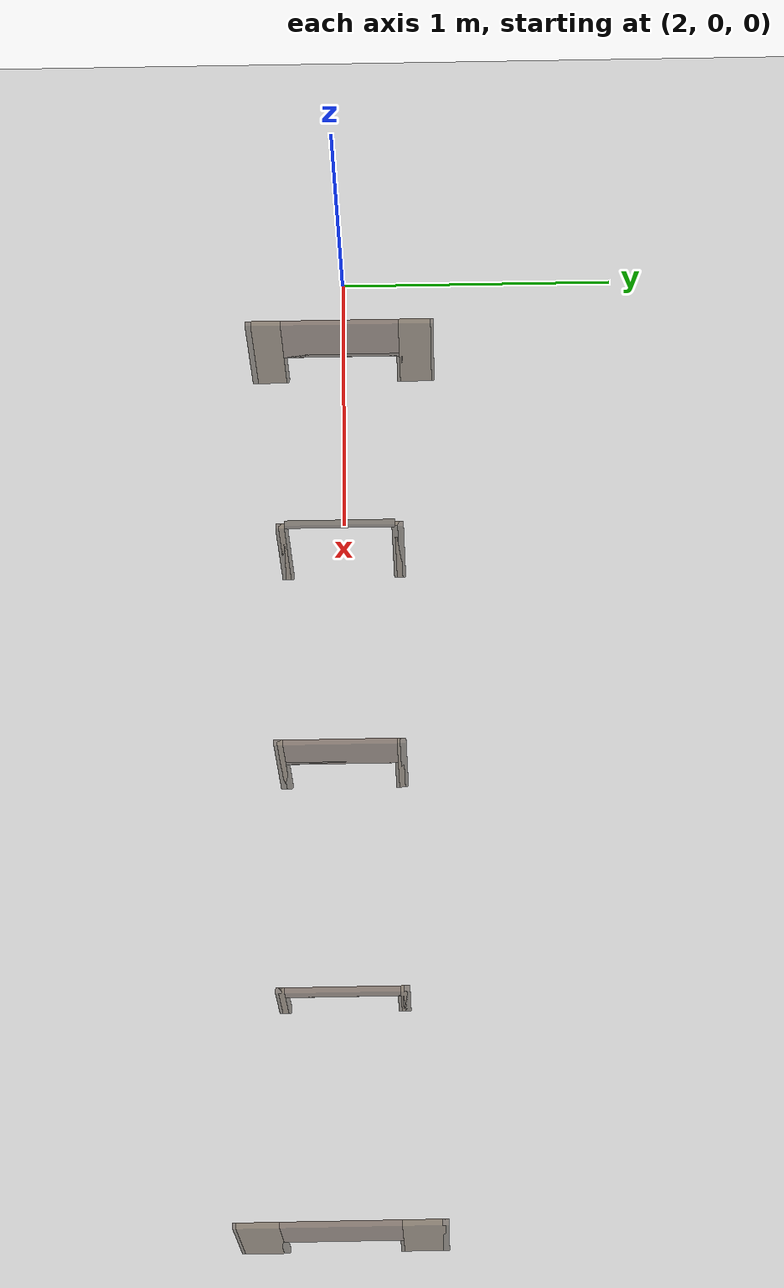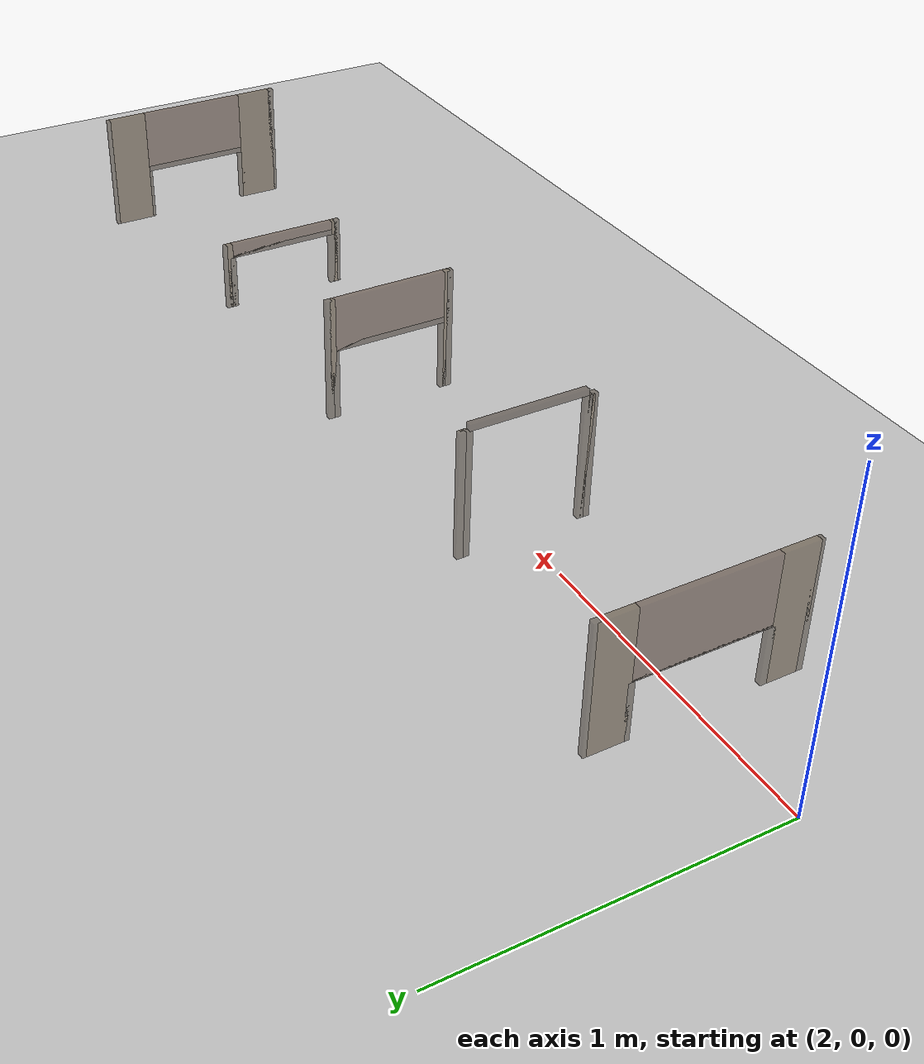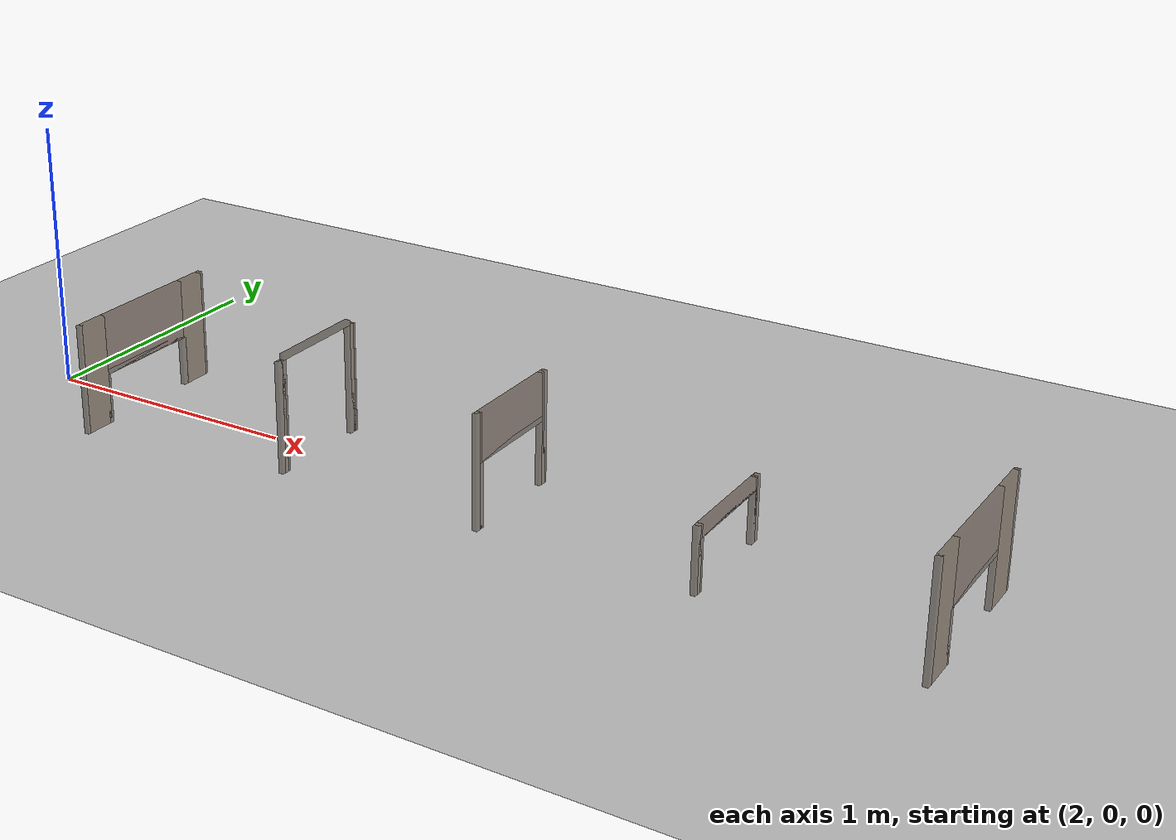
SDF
<sdf version="1.8">
 <world name="friction_world">
  <model name="ground_plane">
   <static>true</static>
   <link name="link">
    <collision name="collision">
     <geometry><plane><normal>0 0 1</normal><size>100 100</size></plane></geometry>
     <surface><friction><ode><mu>0.7</mu><mu2>0.7</mu2></ode></friction></surface>
    </collision>
    <visual name="visual">
     <geometry><plane><normal>0 0 1</normal><size>100 100</size></plane></geometry>
     <material><ambient>0.8 0.8 0.8 1</ambient><diffuse>0.8 0.8 0.8 1</diffuse></material>
    </visual>
   </link>
  </model>
  <model name="cap_b3">
   <static>true</static>
   <link name="ceiling_cap">
    <pose>2.4000000000000004 0 0.2 0 0 0</pose>
    <collision name="c"><geometry><box><size>0.02 0.42 0.02</size></box></geometry></collision>
    <visual name="v">
     <geometry><box><size>0.02 0.42 0.02</size></box></geometry>
     <material><ambient>0.2 0.15 0.1 0.5</ambient></material>
     <transparency>0.2</transparency>
    </visual>
   </link>
   <link name="height_step">
    <pose>2.4000000000000004 0 0.305 0 0 0</pose>
    <collision name="c"><geometry><box><size>0.02 0.42 0.22999999999999998</size></box></geometry></collision>
    <visual name="v">
     <geometry><box><size>0.02 0.42 0.22999999999999998</size></box></geometry>
     <material><ambient>0.28 0.18 0.12 0.5</ambient></material>
     <transparency>0.2</transparency>
    </visual>
   </link>
   <link name="left_cap">
    <pose>2.4000000000000004 -0.21 0.095 0 0 0</pose>
    <collision name="c"><geometry><box><size>0.02 0.02 0.19</size></box></geometry></collision>
    <visual name="v">
     <geometry><box><size>0.02 0.02 0.19</size></box></geometry>
     <material><ambient>0.25 0.2 0.15 0.5</ambient></material>
     <transparency>0.2</transparency>
    </visual>
   </link>
   <link name="right_cap">
    <pose>2.4000000000000004 0.21 0.095 0 0 0</pose>
    <collision name="c"><geometry><box><size>0.02 0.02 0.19</size></box></geometry></collision>
    <visual name="v">
     <geometry><box><size>0.02 0.02 0.19</size></box></geometry>
     <material><ambient>0.25 0.2 0.15 0.5</ambient></material>
     <transparency>0.2</transparency>
    </visual>
   </link>
   <link name="left_flange">
    <pose>2.4000000000000004 -0.2675 0.21 0 0 0</pose>
    <collision name="c"><geometry><box><size>0.02 0.11500000000000002 0.42</size></box></geometry></collision>
    <visual name="v">
     <geometry><box><size>0.02 0.11500000000000002 0.42</size></box></geometry>
     <material><ambient>0.3 0.22 0.12 0.5</ambient></material>
     <transparency>0.2</transparency>
    </visual>
   </link>
   <link name="right_flange">
    <pose>2.4000000000000004 0.2675 0.21 0 0 0</pose>
    <collision name="c"><geometry><box><size>0.02 0.11500000000000002 0.42</size></box></geometry></collision>
    <visual name="v">
     <geometry><box><size>0.02 0.11500000000000002 0.42</size></box></geometry>
     <material><ambient>0.3 0.22 0.12 0.5</ambient></material>
     <transparency>0.2</transparency>
    </visual>
   </link>
   <link name="left_outer_cap">
    <pose>2.4000000000000004 -0.325 0.21 0 0 0</pose>
    <collision name="c"><geometry><box><size>0.02 0.02 0.42</size></box></geometry></collision>
    <visual name="v">
     <geometry><box><size>0.02 0.02 0.42</size></box></geometry>
     <material><ambient>0.25 0.2 0.15 0.5</ambient></material>
     <transparency>0.2</transparency>
    </visual>
   </link>
   <link name="right_outer_cap">
    <pose>2.4000000000000004 0.325 0.21 0 0 0</pose>
    <collision name="c"><geometry><box><size>0.02 0.02 0.42</size></box></geometry></collision>
    <visual name="v">
     <geometry><box><size>0.02 0.02 0.42</size></box></geometry>
     <material><ambient>0.25 0.2 0.15 0.5</ambient></material>
     <transparency>0.2</transparency>
    </visual>
   </link>
  </model>
  <model name="cap_b4">
   <static>true</static>
   <link name="ceiling_cap">
    <pose>3.2 0 0.43 0 0 0</pose>
    <collision name="c"><geometry><box><size>0.02 0.38 0.02</size></box></geometry></collision>
    <visual name="v">
     <geometry><box><size>0.02 0.38 0.02</size></box></geometry>
     <material><ambient>0.2 0.15 0.1 0.5</ambient></material>
     <transparency>0.2</transparency>
    </visual>
   </link>
   <link name="left_cap">
    <pose>3.2 -0.19 0.21 0 0 0</pose>
    <collision name="c"><geometry><box><size>0.02 0.02 0.42</size></box></geometry></collision>
    <visual name="v">
     <geometry><box><size>0.02 0.02 0.42</size></box></geometry>
     <material><ambient>0.25 0.2 0.15 0.5</ambient></material>
     <transparency>0.2</transparency>
    </visual>
   </link>
   <link name="right_cap">
    <pose>3.2 0.19 0.21 0 0 0</pose>
    <collision name="c"><geometry><box><size>0.02 0.02 0.42</size></box></geometry></collision>
    <visual name="v">
     <geometry><box><size>0.02 0.02 0.42</size></box></geometry>
     <material><ambient>0.25 0.2 0.15 0.5</ambient></material>
     <transparency>0.2</transparency>
    </visual>
   </link>
   <link name="left_flange">
    <pose>3.2 -0.2 0.21 0 0 0</pose>
    <collision name="c"><geometry><box><size>0.02 0.01999999999999999 0.42</size></box></geometry></collision>
    <visual name="v">
     <geometry><box><size>0.02 0.01999999999999999 0.42</size></box></geometry>
     <material><ambient>0.3 0.22 0.12 0.5</ambient></material>
     <transparency>0.2</transparency>
    </visual>
   </link>
   <link name="right_flange">
    <pose>3.2 0.2 0.21 0 0 0</pose>
    <collision name="c"><geometry><box><size>0.02 0.01999999999999999 0.42</size></box></geometry></collision>
    <visual name="v">
     <geometry><box><size>0.02 0.01999999999999999 0.42</size></box></geometry>
     <material><ambient>0.3 0.22 0.12 0.5</ambient></material>
     <transparency>0.2</transparency>
    </visual>
   </link>
   <link name="left_outer_cap">
    <pose>3.2 -0.21 0.21 0 0 0</pose>
    <collision name="c"><geometry><box><size>0.02 0.02 0.42</size></box></geometry></collision>
    <visual name="v">
     <geometry><box><size>0.02 0.02 0.42</size></box></geometry>
     <material><ambient>0.25 0.2 0.15 0.5</ambient></material>
     <transparency>0.2</transparency>
    </visual>
   </link>
   <link name="right_outer_cap">
    <pose>3.2 0.21 0.21 0 0 0</pose>
    <collision name="c"><geometry><box><size>0.02 0.02 0.42</size></box></geometry></collision>
    <visual name="v">
     <geometry><box><size>0.02 0.02 0.42</size></box></geometry>
     <material><ambient>0.25 0.2 0.15 0.5</ambient></material>
     <transparency>0.2</transparency>
    </visual>
   </link>
  </model>
  <model name="cap_b5">
   <static>true</static>
   <link name="ceiling_cap">
    <pose>4.0 0 0.25 0 0 0</pose>
    <collision name="c"><geometry><box><size>0.02 0.38 0.02</size></box></geometry></collision>
    <visual name="v">
     <geometry><box><size>0.02 0.38 0.02</size></box></geometry>
     <material><ambient>0.2 0.15 0.1 0.5</ambient></material>
     <transparency>0.2</transparency>
    </visual>
   </link>
   <link name="height_step">
    <pose>4.0 0 0.32999999999999996 0 0 0</pose>
    <collision name="c"><geometry><box><size>0.02 0.38 0.18</size></box></geometry></collision>
    <visual name="v">
     <geometry><box><size>0.02 0.38 0.18</size></box></geometry>
     <material><ambient>0.28 0.18 0.12 0.5</ambient></material>
     <transparency>0.2</transparency>
    </visual>
   </link>
   <link name="left_cap">
    <pose>4.0 -0.19 0.12 0 0 0</pose>
    <collision name="c"><geometry><box><size>0.02 0.02 0.24</size></box></geometry></collision>
    <visual name="v">
     <geometry><box><size>0.02 0.02 0.24</size></box></geometry>
     <material><ambient>0.25 0.2 0.15 0.5</ambient></material>
     <transparency>0.2</transparency>
    </visual>
   </link>
   <link name="right_cap">
    <pose>4.0 0.19 0.12 0 0 0</pose>
    <collision name="c"><geometry><box><size>0.02 0.02 0.24</size></box></geometry></collision>
    <visual name="v">
     <geometry><box><size>0.02 0.02 0.24</size></box></geometry>
     <material><ambient>0.25 0.2 0.15 0.5</ambient></material>
     <transparency>0.2</transparency>
    </visual>
   </link>
   <link name="left_flange">
    <pose>4.0 -0.2 0.21 0 0 0</pose>
    <collision name="c"><geometry><box><size>0.02 0.01999999999999999 0.42</size></box></geometry></collision>
    <visual name="v">
     <geometry><box><size>0.02 0.01999999999999999 0.42</size></box></geometry>
     <material><ambient>0.3 0.22 0.12 0.5</ambient></material>
     <transparency>0.2</transparency>
    </visual>
   </link>
   <link name="right_flange">
    <pose>4.0 0.2 0.21 0 0 0</pose>
    <collision name="c"><geometry><box><size>0.02 0.01999999999999999 0.42</size></box></geometry></collision>
    <visual name="v">
     <geometry><box><size>0.02 0.01999999999999999 0.42</size></box></geometry>
     <material><ambient>0.3 0.22 0.12 0.5</ambient></material>
     <transparency>0.2</transparency>
    </visual>
   </link>
   <link name="left_outer_cap">
    <pose>4.0 -0.21 0.21 0 0 0</pose>
    <collision name="c"><geometry><box><size>0.02 0.02 0.42</size></box></geometry></collision>
    <visual name="v">
     <geometry><box><size>0.02 0.02 0.42</size></box></geometry>
     <material><ambient>0.25 0.2 0.15 0.5</ambient></material>
     <transparency>0.2</transparency>
    </visual>
   </link>
   <link name="right_outer_cap">
    <pose>4.0 0.21 0.21 0 0 0</pose>
    <collision name="c"><geometry><box><size>0.02 0.02 0.42</size></box></geometry></collision>
    <visual name="v">
     <geometry><box><size>0.02 0.02 0.42</size></box></geometry>
     <material><ambient>0.25 0.2 0.15 0.5</ambient></material>
     <transparency>0.2</transparency>
    </visual>
   </link>
  </model>
  <model name="cap_b6">
   <static>true</static>
   <link name="ceiling_cap">
    <pose>4.800000000000001 0 0.2 0 0 0</pose>
    <collision name="c"><geometry><box><size>0.02 0.38 0.02</size></box></geometry></collision>
    <visual name="v">
     <geometry><box><size>0.02 0.38 0.02</size></box></geometry>
     <material><ambient>0.2 0.15 0.1 0.5</ambient></material>
     <transparency>0.2</transparency>
    </visual>
   </link>
   <link name="height_step">
    <pose>4.800000000000001 0 0.215 0 0 0</pose>
    <collision name="c"><geometry><box><size>0.02 0.38 0.04999999999999999</size></box></geometry></collision>
    <visual name="v">
     <geometry><box><size>0.02 0.38 0.04999999999999999</size></box></geometry>
     <material><ambient>0.28 0.18 0.12 0.5</ambient></material>
     <transparency>0.2</transparency>
    </visual>
   </link>
   <link name="left_cap">
    <pose>4.800000000000001 -0.19 0.095 0 0 0</pose>
    <collision name="c"><geometry><box><size>0.02 0.02 0.19</size></box></geometry></collision>
    <visual name="v">
     <geometry><box><size>0.02 0.02 0.19</size></box></geometry>
     <material><ambient>0.25 0.2 0.15 0.5</ambient></material>
     <transparency>0.2</transparency>
    </visual>
   </link>
   <link name="right_cap">
    <pose>4.800000000000001 0.19 0.095 0 0 0</pose>
    <collision name="c"><geometry><box><size>0.02 0.02 0.19</size></box></geometry></collision>
    <visual name="v">
     <geometry><box><size>0.02 0.02 0.19</size></box></geometry>
     <material><ambient>0.25 0.2 0.15 0.5</ambient></material>
     <transparency>0.2</transparency>
    </visual>
   </link>
   <link name="left_flange">
    <pose>4.800000000000001 -0.2 0.12 0 0 0</pose>
    <collision name="c"><geometry><box><size>0.02 0.01999999999999999 0.24</size></box></geometry></collision>
    <visual name="v">
     <geometry><box><size>0.02 0.01999999999999999 0.24</size></box></geometry>
     <material><ambient>0.3 0.22 0.12 0.5</ambient></material>
     <transparency>0.2</transparency>
    </visual>
   </link>
   <link name="right_flange">
    <pose>4.800000000000001 0.2 0.12 0 0 0</pose>
    <collision name="c"><geometry><box><size>0.02 0.01999999999999999 0.24</size></box></geometry></collision>
    <visual name="v">
     <geometry><box><size>0.02 0.01999999999999999 0.24</size></box></geometry>
     <material><ambient>0.3 0.22 0.12 0.5</ambient></material>
     <transparency>0.2</transparency>
    </visual>
   </link>
   <link name="left_outer_cap">
    <pose>4.800000000000001 -0.21 0.12 0 0 0</pose>
    <collision name="c"><geometry><box><size>0.02 0.02 0.24</size></box></geometry></collision>
    <visual name="v">
     <geometry><box><size>0.02 0.02 0.24</size></box></geometry>
     <material><ambient>0.25 0.2 0.15 0.5</ambient></material>
     <transparency>0.2</transparency>
    </visual>
   </link>
   <link name="right_outer_cap">
    <pose>4.800000000000001 0.21 0.12 0 0 0</pose>
    <collision name="c"><geometry><box><size>0.02 0.02 0.24</size></box></geometry></collision>
    <visual name="v">
     <geometry><box><size>0.02 0.02 0.24</size></box></geometry>
     <material><ambient>0.25 0.2 0.15 0.5</ambient></material>
     <transparency>0.2</transparency>
    </visual>
   </link>
  </model>
  <model name="cap_b7">
   <static>true</static>
   <link name="ceiling_cap">
    <pose>5.6000000000000005 0 0.2 0 0 0</pose>
    <collision name="c"><geometry><box><size>0.02 0.38 0.02</size></box></geometry></collision>
    <visual name="v">
     <geometry><box><size>0.02 0.38 0.02</size></box></geometry>
     <material><ambient>0.2 0.15 0.1 0.5</ambient></material>
     <transparency>0.2</transparency>
    </visual>
   </link>
   <link name="height_step">
    <pose>5.6000000000000005 0 0.305 0 0 0</pose>
    <collision name="c"><geometry><box><size>0.02 0.38 0.22999999999999998</size></box></geometry></collision>
    <visual name="v">
     <geometry><box><size>0.02 0.38 0.22999999999999998</size></box></geometry>
     <material><ambient>0.28 0.18 0.12 0.5</ambient></material>
     <transparency>0.2</transparency>
    </visual>
   </link>
   <link name="left_cap">
    <pose>5.6000000000000005 -0.19 0.095 0 0 0</pose>
    <collision name="c"><geometry><box><size>0.02 0.02 0.19</size></box></geometry></collision>
    <visual name="v">
     <geometry><box><size>0.02 0.02 0.19</size></box></geometry>
     <material><ambient>0.25 0.2 0.15 0.5</ambient></material>
     <transparency>0.2</transparency>
    </visual>
   </link>
   <link name="right_cap">
    <pose>5.6000000000000005 0.19 0.095 0 0 0</pose>
    <collision name="c"><geometry><box><size>0.02 0.02 0.19</size></box></geometry></collision>
    <visual name="v">
     <geometry><box><size>0.02 0.02 0.19</size></box></geometry>
     <material><ambient>0.25 0.2 0.15 0.5</ambient></material>
     <transparency>0.2</transparency>
    </visual>
   </link>
   <link name="left_flange">
    <pose>5.6000000000000005 -0.2575 0.21 0 0 0</pose>
    <collision name="c"><geometry><box><size>0.02 0.135 0.42</size></box></geometry></collision>
    <visual name="v">
     <geometry><box><size>0.02 0.135 0.42</size></box></geometry>
     <material><ambient>0.3 0.22 0.12 0.5</ambient></material>
     <transparency>0.2</transparency>
    </visual>
   </link>
   <link name="right_flange">
    <pose>5.6000000000000005 0.2575 0.21 0 0 0</pose>
    <collision name="c"><geometry><box><size>0.02 0.135 0.42</size></box></geometry></collision>
    <visual name="v">
     <geometry><box><size>0.02 0.135 0.42</size></box></geometry>
     <material><ambient>0.3 0.22 0.12 0.5</ambient></material>
     <transparency>0.2</transparency>
    </visual>
   </link>
   <link name="left_outer_cap">
    <pose>5.6000000000000005 -0.325 0.21 0 0 0</pose>
    <collision name="c"><geometry><box><size>0.02 0.02 0.42</size></box></geometry></collision>
    <visual name="v">
     <geometry><box><size>0.02 0.02 0.42</size></box></geometry>
     <material><ambient>0.25 0.2 0.15 0.5</ambient></material>
     <transparency>0.2</transparency>
    </visual>
   </link>
   <link name="right_outer_cap">
    <pose>5.6000000000000005 0.325 0.21 0 0 0</pose>
    <collision name="c"><geometry><box><size>0.02 0.02 0.42</size></box></geometry></collision>
    <visual name="v">
     <geometry><box><size>0.02 0.02 0.42</size></box></geometry>
     <material><ambient>0.25 0.2 0.15 0.5</ambient></material>
     <transparency>0.2</transparency>
    </visual>
   </link>
  </model>
 </world>
</sdf>
